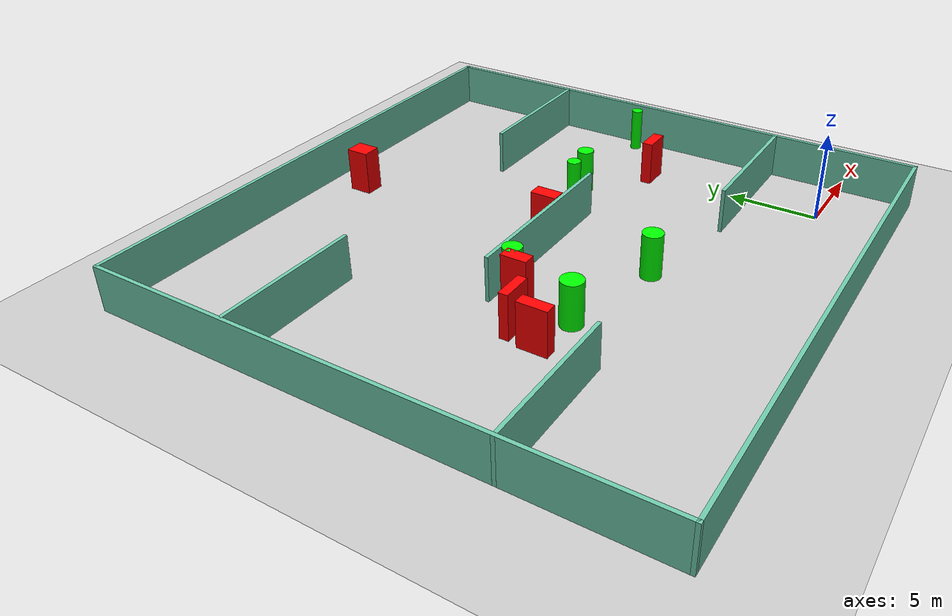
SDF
<sdf version="1.7">
 <world name="default">
  <light name="sun" type="directional">
   <pose>0 0 10 0 -0 0</pose>
   <diffuse>0.8 0.8 0.8 1</diffuse>
   <specular>0.2 0.2 0.2 1</specular>
   <attenuation>
    <range>1000</range>
    <constant>0.9</constant>
    <linear>0.01</linear>
    <quadratic>0.001</quadratic>
   </attenuation>
   <direction>-0.5 0.1 -0.9</direction>
   <spot><inner_angle>0</inner_angle><outer_angle>0</outer_angle><falloff>0</falloff></spot>
  </light>
  <model name="ground_plane">
   <static>1</static>
   <link name="link">
    <collision name="collision">
     <geometry><plane><normal>0 0 1</normal><size>100 100</size></plane></geometry>
     <surface>
      <contact><collide_bitmask>65535</collide_bitmask></contact>
      <friction><ode><mu>100</mu><mu2>50</mu2></ode></friction>
     </surface>
    </collision>
    <visual name="visual">
     <cast_shadows>0</cast_shadows>
     <geometry><plane><normal>0 0 1</normal><size>100 100</size></plane></geometry>
     <material>
      <script><uri>file://media/materials/scripts/gazebo.material</uri><name>Gazebo/Grey</name></script>
     </material>
    </visual>
   </link>
  </model>
  <gravity>0 0 -9.8</gravity>
  <magnetic_field>6e-06 2.3e-05 -4.2e-05</magnetic_field>
  <atmosphere type="adiabatic"/>
  <physics type="ode">
   <max_step_size>0.001</max_step_size>
   <real_time_factor>1</real_time_factor>
   <real_time_update_rate>1000</real_time_update_rate>
  </physics>
  <scene><ambient>0.4 0.4 0.4 1</ambient><background>0.7 0.7 0.7 1</background><shadows>1</shadows></scene>
  <spherical_coordinates>
   <surface_model>EARTH_WGS84</surface_model>
   <latitude_deg>0</latitude_deg>
   <longitude_deg>0</longitude_deg>
   <elevation>0</elevation>
   <heading_deg>0</heading_deg>
  </spherical_coordinates>
  <model name="my_base_walls">
   <link name="Wall_10">
    <collision name="Wall_10_Collision">
     <geometry><box><size>8.2 0.2 2.5</size></box></geometry>
     <pose>0 0 1.25 0 -0 0</pose>
    </collision>
    <visual name="Wall_10_Visual">
     <pose>0 0 1.25 0 -0 0</pose>
     <geometry><box><size>8.2 0.2 2.5</size></box></geometry>
     <material>
      <script><uri>file://media/materials/scripts/gazebo.material</uri><name>Gazebo/Grey</name></script>
      <ambient>0.435294 0.796078 0.67451 1</ambient>
     </material>
     <meta><layer>0</layer></meta>
    </visual>
    <pose>-11 -7 0 0 -0 0</pose>
   </link>
   <link name="Wall_12">
    <collision name="Wall_12_Collision">
     <geometry><box><size>8.2 0.2 2.5</size></box></geometry>
     <pose>0 0 1.25 0 -0 0</pose>
    </collision>
    <visual name="Wall_12_Visual">
     <pose>0 0 1.25 0 -0 0</pose>
     <geometry><box><size>8.2 0.2 2.5</size></box></geometry>
     <material>
      <script><uri>file://media/materials/scripts/gazebo.material</uri><name>Gazebo/Grey</name></script>
      <ambient>0.435294 0.796078 0.67451 1</ambient>
     </material>
     <meta><layer>0</layer></meta>
    </visual>
    <pose>-11 7 0 0 -0 0</pose>
   </link>
   <link name="Wall_14">
    <collision name="Wall_14_Collision">
     <geometry><box><size>8.2 0.2 2.5</size></box></geometry>
     <pose>0 0 1.25 0 -0 0</pose>
    </collision>
    <visual name="Wall_14_Visual">
     <pose>0 0 1.25 0 -0 0</pose>
     <geometry><box><size>8.2 0.2 2.5</size></box></geometry>
     <material>
      <script><uri>file://media/materials/scripts/gazebo.material</uri><name>Gazebo/Grey</name></script>
      <ambient>0.435294 0.796078 0.67451 1</ambient>
     </material>
     <meta><layer>0</layer></meta>
    </visual>
    <pose>11 7 0 0 -0 3.14159</pose>
   </link>
   <link name="Wall_16">
    <collision name="Wall_16_Collision">
     <geometry><box><size>10.2 0.2 2.5</size></box></geometry>
     <pose>0 0 1.25 0 -0 0</pose>
    </collision>
    <visual name="Wall_16_Visual">
     <pose>0 0 1.25 0 -0 0</pose>
     <geometry><box><size>10.2 0.2 2.5</size></box></geometry>
     <material>
      <script><uri>file://media/materials/scripts/gazebo.material</uri><name>Gazebo/Grey</name></script>
      <ambient>0.435294 0.796078 0.67451 1</ambient>
     </material>
     <meta><layer>0</layer></meta>
    </visual>
    <pose>0 0 0 0 -0 3.14159</pose>
   </link>
   <link name="Wall_2">
    <collision name="Wall_2_Collision">
     <geometry><box><size>30.2 0.2 2.5</size></box></geometry>
     <pose>0 0 1.25 0 -0 0</pose>
    </collision>
    <visual name="Wall_2_Visual">
     <pose>0 0 1.25 0 -0 0</pose>
     <geometry><box><size>30.2 0.2 2.5</size></box></geometry>
     <material>
      <script><uri>file://media/materials/scripts/gazebo.material</uri><name>Gazebo/Grey</name></script>
      <ambient>0.435294 0.796078 0.67451 1</ambient>
     </material>
     <meta><layer>0</layer></meta>
    </visual>
    <pose>0 -15 0 0 -0 3.14159</pose>
   </link>
   <link name="Wall_3">
    <collision name="Wall_3_Collision">
     <geometry><box><size>30.2 0.2 2.5</size></box></geometry>
     <pose>0 0 1.25 0 -0 0</pose>
    </collision>
    <visual name="Wall_3_Visual">
     <pose>0 0 1.25 0 -0 0</pose>
     <geometry><box><size>30.2 0.2 2.5</size></box></geometry>
     <material>
      <script><uri>file://media/materials/scripts/gazebo.material</uri><name>Gazebo/Grey</name></script>
      <ambient>0.435294 0.796078 0.67451 1</ambient>
     </material>
     <meta><layer>0</layer></meta>
    </visual>
    <pose>-15 0 0 0 -0 1.5708</pose>
   </link>
   <link name="Wall_4">
    <collision name="Wall_4_Collision">
     <geometry><box><size>30.2 0.2 2.5</size></box></geometry>
     <pose>0 0 1.25 0 -0 0</pose>
    </collision>
    <visual name="Wall_4_Visual">
     <pose>0 0 1.25 0 -0 0</pose>
     <geometry><box><size>30.2 0.2 2.5</size></box></geometry>
     <material>
      <script><uri>file://media/materials/scripts/gazebo.material</uri><name>Gazebo/Grey</name></script>
      <ambient>0.435294 0.796078 0.67451 1</ambient>
     </material>
     <meta><layer>0</layer></meta>
    </visual>
    <pose>0 15 0 0 -0 0</pose>
   </link>
   <link name="Wall_6">
    <collision name="Wall_6_Collision">
     <geometry><box><size>30.2 0.2 2.5</size></box></geometry>
     <pose>0 0 1.25 0 -0 0</pose>
    </collision>
    <visual name="Wall_6_Visual">
     <pose>0 0 1.25 0 -0 0</pose>
     <geometry><box><size>30.2 0.2 2.5</size></box></geometry>
     <material>
      <script><uri>file://media/materials/scripts/gazebo.material</uri><name>Gazebo/Grey</name></script>
      <ambient>0.435294 0.796078 0.67451 1</ambient>
     </material>
     <meta><layer>0</layer></meta>
    </visual>
    <pose>15 0 0 0 -0 1.5708</pose>
   </link>
   <link name="Wall_8">
    <collision name="Wall_8_Collision">
     <geometry><box><size>8.2 0.2 2.5</size></box></geometry>
     <pose>0 0 1.25 0 -0 0</pose>
    </collision>
    <visual name="Wall_8_Visual">
     <pose>0 0 1.25 0 -0 0</pose>
     <geometry><box><size>8.2 0.2 2.5</size></box></geometry>
     <material>
      <script><uri>file://media/materials/scripts/gazebo.material</uri><name>Gazebo/Grey</name></script>
      <ambient>0.435294 0.796078 0.67451 1</ambient>
     </material>
     <meta><layer>0</layer></meta>
    </visual>
    <pose>11 -7 0 0 -0 3.14159</pose>
   </link>
   <static>1</static>
   <pose>-11 11 0 0 -0 0</pose>
  </model>
  <model name="cylinder1">
   <static>1</static>
   <link name="link">
    <inertial>
     <mass>1</mass>
     <inertia><ixx>0.5</ixx><ixy>0</ixy><ixz>0</ixz><iyy>0.5</iyy><iyz>0</iyz><izz>1</izz></inertia>
    </inertial>
    <collision name="collision">
     <geometry><cylinder><radius>0.5597441066832756</radius><length>2.5</length></cylinder></geometry>
    </collision>
    <visual name="visual">
     <geometry><cylinder><radius>0.5597441066832756</radius><length>2.5</length></cylinder></geometry>
     <material>
      <ambient>0 1 0 1</ambient>
      <diffuse>0 1 0 1</diffuse>
      <specular>0.1 0.1 0.1 1</specular>
      <emissive>0 0 0 0</emissive>
     </material>
    </visual>
   </link>
   <pose>-9.98604569807928 5.282620888203972 1.25 0 0 0</pose>
  </model>
  <model name="cylinder2">
   <static>1</static>
   <link name="link">
    <inertial>
     <mass>1</mass>
     <inertia><ixx>0.5</ixx><ixy>0</ixy><ixz>0</ixz><iyy>0.5</iyy><iyz>0</iyz><izz>1</izz></inertia>
    </inertial>
    <collision name="collision">
     <geometry><cylinder><radius>0.5126890196025276</radius><length>2.5</length></cylinder></geometry>
    </collision>
    <visual name="visual">
     <geometry><cylinder><radius>0.5126890196025276</radius><length>2.5</length></cylinder></geometry>
     <material>
      <ambient>0 1 0 1</ambient>
      <diffuse>0 1 0 1</diffuse>
      <specular>0.1 0.1 0.1 1</specular>
      <emissive>0 0 0 0</emissive>
     </material>
    </visual>
   </link>
   <pose>-14.613654627450426 10.484594731696337 1.25 0 0 0</pose>
  </model>
  <model name="cylinder3">
   <static>1</static>
   <link name="link">
    <inertial>
     <mass>1</mass>
     <inertia><ixx>0.5</ixx><ixy>0</ixy><ixz>0</ixz><iyy>0.5</iyy><iyz>0</iyz><izz>1</izz></inertia>
    </inertial>
    <collision name="collision">
     <geometry><cylinder><radius>0.45861725231945455</radius><length>2.5</length></cylinder></geometry>
    </collision>
    <visual name="visual">
     <geometry><cylinder><radius>0.45861725231945455</radius><length>2.5</length></cylinder></geometry>
     <material>
      <ambient>0 1 0 1</ambient>
      <diffuse>0 1 0 1</diffuse>
      <specular>0.1 0.1 0.1 1</specular>
      <emissive>0 0 0 0</emissive>
     </material>
    </visual>
   </link>
   <pose>-3.5464332557300686 12.591149260793465 1.25 0 0 0</pose>
  </model>
  <model name="cylinder4">
   <static>1</static>
   <link name="link">
    <inertial>
     <mass>1</mass>
     <inertia><ixx>0.5</ixx><ixy>0</ixy><ixz>0</ixz><iyy>0.5</iyy><iyz>0</iyz><izz>1</izz></inertia>
    </inertial>
    <collision name="collision">
     <geometry><cylinder><radius>0.3834525843870788</radius><length>2.5</length></cylinder></geometry>
    </collision>
    <visual name="visual">
     <geometry><cylinder><radius>0.3834525843870788</radius><length>2.5</length></cylinder></geometry>
     <material>
      <ambient>0 1 0 1</ambient>
      <diffuse>0 1 0 1</diffuse>
      <specular>0.1 0.1 0.1 1</specular>
      <emissive>0 0 0 0</emissive>
     </material>
    </visual>
   </link>
   <pose>-5.07838662779044 12.477758997287982 1.25 0 0 0</pose>
  </model>
  <model name="cylinder5">
   <static>1</static>
   <link name="link">
    <inertial>
     <mass>1</mass>
     <inertia><ixx>0.5</ixx><ixy>0</ixy><ixz>0</ixz><iyy>0.5</iyy><iyz>0</iyz><izz>1</izz></inertia>
    </inertial>
    <collision name="collision">
     <geometry><cylinder><radius>0.3094485555712234</radius><length>2.5</length></cylinder></geometry>
    </collision>
    <visual name="visual">
     <geometry><cylinder><radius>0.3094485555712234</radius><length>2.5</length></cylinder></geometry>
     <material>
      <ambient>0 1 0 1</ambient>
      <diffuse>0 1 0 1</diffuse>
      <specular>0.1 0.1 0.1 1</specular>
      <emissive>0 0 0 0</emissive>
     </material>
    </visual>
   </link>
   <pose>3.136424440116837 12.609084669657188 1.25 0 0 0</pose>
  </model>
  <model name="cylinder6">
   <static>1</static>
   <link name="link">
    <inertial>
     <mass>1</mass>
     <inertia><ixx>0.5</ixx><ixy>0</ixy><ixz>0</ixz><iyy>0.5</iyy><iyz>0</iyz><izz>1</izz></inertia>
    </inertial>
    <collision name="collision">
     <geometry><cylinder><radius>0.603748179730424</radius><length>2.5</length></cylinder></geometry>
    </collision>
    <visual name="visual">
     <geometry><cylinder><radius>0.603748179730424</radius><length>2.5</length></cylinder></geometry>
     <material>
      <ambient>0 1 0 1</ambient>
      <diffuse>0 1 0 1</diffuse>
      <specular>0.1 0.1 0.1 1</specular>
      <emissive>0 0 0 0</emissive>
     </material>
    </visual>
   </link>
   <pose>-15.657735452095324 6.611877412351664 1.25 0 0 0</pose>
  </model>
  <model name="box1">
   <static>1</static>
   <link name="link">
    <inertial>
     <mass>1</mass>
     <inertia><ixx>0.083</ixx><ixy>0</ixy><ixz>0</ixz><iyy>0.083</iyy><iyz>0</iyz><izz>0.083</izz></inertia>
    </inertial>
    <collision name="collision">
     <geometry><box><size>0.701590020597162 1.4378539140867888 2.5</size></box></geometry>
    </collision>
    <visual name="visual">
     <geometry><box><size>0.701590020597162 1.4378539140867888 2.5</size></box></geometry>
     <material>
      <ambient>1 0 0 1</ambient>
      <diffuse>1 0 0 1</diffuse>
      <specular>0.1 0.1 0.1 1</specular>
      <emissive>0 0 0 0</emissive>
     </material>
    </visual>
    <sensor name="my_contact" type="contact">
     <contact><collision>box_collision</collision><topic>__default_topic__</topic></contact>
    </sensor>
   </link>
   <pose>-15.191330510198368 9.871962785036676 1.25 0 0 0</pose>
  </model>
  <model name="box2">
   <static>1</static>
   <link name="link">
    <inertial>
     <mass>1</mass>
     <inertia><ixx>0.083</ixx><ixy>0</ixy><ixz>0</ixz><iyy>0.083</iyy><iyz>0</iyz><izz>0.083</izz></inertia>
    </inertial>
    <collision name="collision">
     <geometry><box><size>0.6382155319134096 1.6409606411064739 2.5</size></box></geometry>
    </collision>
    <visual name="visual">
     <geometry><box><size>0.6382155319134096 1.6409606411064739 2.5</size></box></geometry>
     <material>
      <ambient>1 0 0 1</ambient>
      <diffuse>1 0 0 1</diffuse>
      <specular>0.1 0.1 0.1 1</specular>
      <emissive>0 0 0 0</emissive>
     </material>
    </visual>
    <sensor name="my_contact" type="contact">
     <contact><collision>box_collision</collision><topic>__default_topic__</topic></contact>
    </sensor>
   </link>
   <pose>-18.146457046741233 7.0599652214988176 1.25 0 0 0</pose>
  </model>
  <model name="box3">
   <static>1</static>
   <link name="link">
    <inertial>
     <mass>1</mass>
     <inertia><ixx>0.083</ixx><ixy>0</ixy><ixz>0</ixz><iyy>0.083</iyy><iyz>0</iyz><izz>0.083</izz></inertia>
    </inertial>
    <collision name="collision">
     <geometry><box><size>1.5416380104298386 0.6011129572914777 2.5</size></box></geometry>
    </collision>
    <visual name="visual">
     <geometry><box><size>1.5416380104298386 0.6011129572914777 2.5</size></box></geometry>
     <material>
      <ambient>1 0 0 1</ambient>
      <diffuse>1 0 0 1</diffuse>
      <specular>0.1 0.1 0.1 1</specular>
      <emissive>0 0 0 0</emissive>
     </material>
    </visual>
    <sensor name="my_contact" type="contact">
     <contact><collision>box_collision</collision><topic>__default_topic__</topic></contact>
    </sensor>
   </link>
   <pose>-0.20285340493027348 9.941675822645902 1.25 0 0 0</pose>
  </model>
  <model name="box4">
   <static>1</static>
   <link name="link">
    <inertial>
     <mass>1</mass>
     <inertia><ixx>0.083</ixx><ixy>0</ixy><ixz>0</ixz><iyy>0.083</iyy><iyz>0</iyz><izz>0.083</izz></inertia>
    </inertial>
    <collision name="collision">
     <geometry><box><size>1.055624286738448 1.2966967327821366 2.5</size></box></geometry>
    </collision>
    <visual name="visual">
     <geometry><box><size>1.055624286738448 1.2966967327821366 2.5</size></box></geometry>
     <material>
      <ambient>1 0 0 1</ambient>
      <diffuse>1 0 0 1</diffuse>
      <specular>0.1 0.1 0.1 1</specular>
      <emissive>0 0 0 0</emissive>
     </material>
    </visual>
    <sensor name="my_contact" type="contact">
     <contact><collision>box_collision</collision><topic>__default_topic__</topic></contact>
    </sensor>
   </link>
   <pose>-9.922064333697334 23.632175117373333 1.25 0 0 0</pose>
  </model>
  <model name="box5">
   <static>1</static>
   <link name="link">
    <inertial>
     <mass>1</mass>
     <inertia><ixx>0.083</ixx><ixy>0</ixy><ixz>0</ixz><iyy>0.083</iyy><iyz>0</iyz><izz>0.083</izz></inertia>
    </inertial>
    <collision name="collision">
     <geometry><box><size>0.8014561384352851 1.4865636890509486 2.5</size></box></geometry>
    </collision>
    <visual name="visual">
     <geometry><box><size>0.8014561384352851 1.4865636890509486 2.5</size></box></geometry>
     <material>
      <ambient>1 0 0 1</ambient>
      <diffuse>1 0 0 1</diffuse>
      <specular>0.1 0.1 0.1 1</specular>
      <emissive>0 0 0 0</emissive>
     </material>
    </visual>
    <sensor name="my_contact" type="contact">
     <contact><collision>box_collision</collision><topic>__default_topic__</topic></contact>
    </sensor>
   </link>
   <pose>-9.074505835632419 11.886323340585458 1.25 0 0 0</pose>
  </model>
  <model name="box6">
   <static>1</static>
   <link name="link">
    <inertial>
     <mass>1</mass>
     <inertia><ixx>0.083</ixx><ixy>0</ixy><ixz>0</ixz><iyy>0.083</iyy><iyz>0</iyz><izz>0.083</izz></inertia>
    </inertial>
    <collision name="collision">
     <geometry><box><size>1.660144480119629 0.5047102544286406 2.5</size></box></geometry>
    </collision>
    <visual name="visual">
     <geometry><box><size>1.660144480119629 0.5047102544286406 2.5</size></box></geometry>
     <material>
      <ambient>1 0 0 1</ambient>
      <diffuse>1 0 0 1</diffuse>
      <specular>0.1 0.1 0.1 1</specular>
      <emissive>0 0 0 0</emissive>
     </material>
    </visual>
    <sensor name="my_contact" type="contact">
     <contact><collision>box_collision</collision><topic>__default_topic__</topic></contact>
    </sensor>
   </link>
   <pose>-17.44412674911119 8.648000610103473 1.25 0 0 0</pose>
  </model>
 </world>
</sdf>
